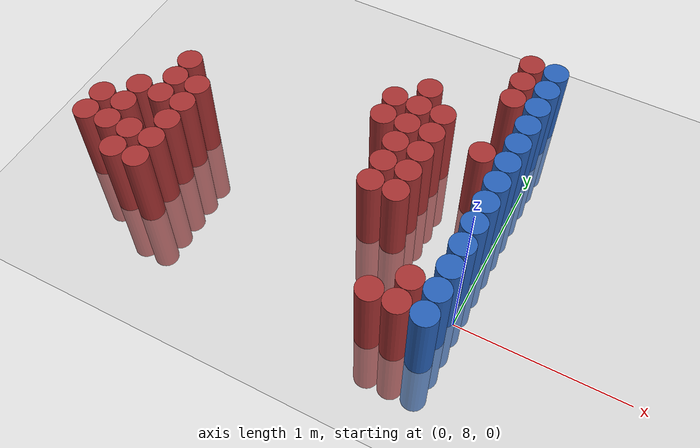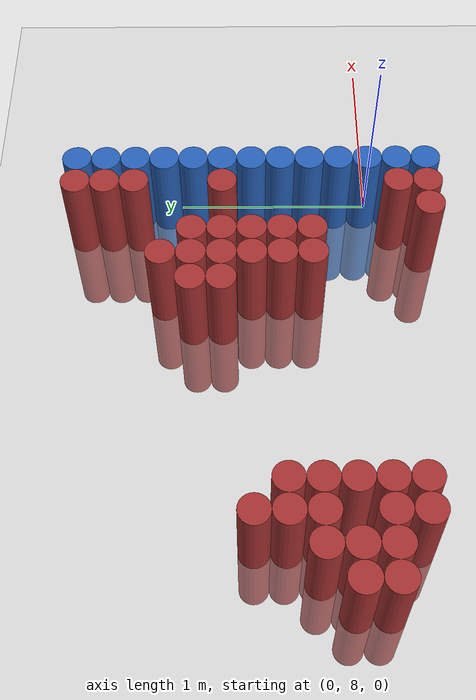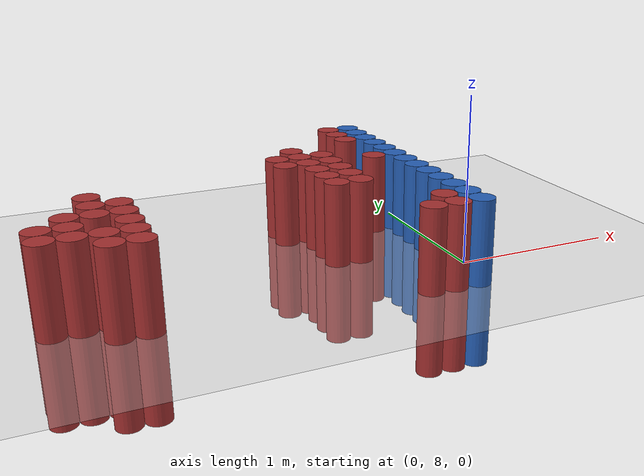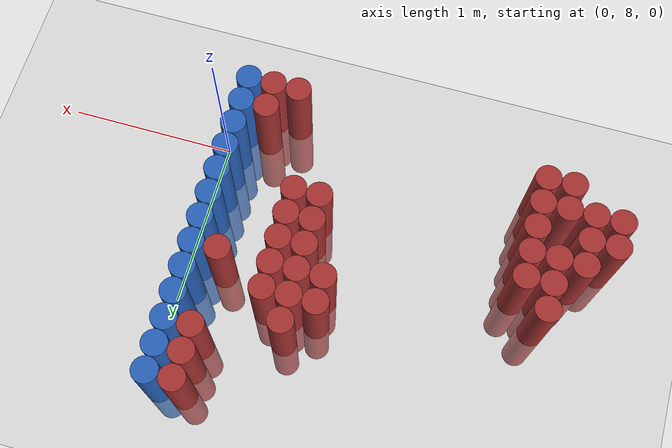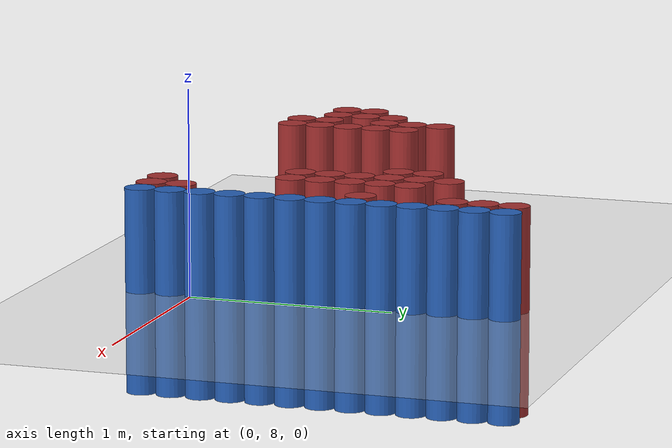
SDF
<sdf version="1.6">
 <world name="default">
  <model name="ground_plane">
   <static>1</static>
   <link name="link">
    <collision name="collision">
     <geometry><plane><normal>0 0 1</normal><size>100 100</size></plane></geometry>
     <surface><friction><ode><mu>100</mu><mu2>50</mu2></ode></friction></surface>
    </collision>
    <visual name="visual">
     <cast_shadows>0</cast_shadows>
     <geometry><plane><normal>0 0 1</normal><size>100 100</size></plane></geometry>
     <material>
      <script><uri>file://media/materials/scripts/gazebo.material</uri><name>Gazebo/Grey</name></script>
     </material>
    </visual>
   </link>
  </model>
  <model name="unit_cylinder_172">
   <static>1</static>
   <pose>-2.325000 8.025000 0.000000 0.000000 0.000000 0.000000</pose>
   <link name="link">
    <inertial>
     <mass>1</mass>
     <inertia><ixx>0.145833</ixx><ixy>0</ixy><ixz>0</ixz><iyy>0.145833</iyy><iyz>0</iyz><izz>0.125</izz></inertia>
    </inertial>
    <collision name="collision">
     <geometry><cylinder><radius>0.075000</radius><length>1</length></cylinder></geometry>
    </collision>
    <visual name="visual">
     <geometry><cylinder><radius>0.075000</radius><length>1</length></cylinder></geometry>
     <material>
      <ambient>0.648000 0.192000 0.192000 1</ambient>
      <diffuse>0.648000 0.192000 0.192000 1</diffuse>
     </material>
     <material>
      <script><name>Gazebo/Grey</name><uri>file://media/materials/scripts/gazebo.material</uri></script>
     </material>
    </visual>
   </link>
  </model>
  <model name="unit_cylinder_173">
   <static>1</static>
   <pose>-2.325000 8.175000 0.000000 0.000000 0.000000 0.000000</pose>
   <link name="link">
    <inertial>
     <mass>1</mass>
     <inertia><ixx>0.145833</ixx><ixy>0</ixy><ixz>0</ixz><iyy>0.145833</iyy><iyz>0</iyz><izz>0.125</izz></inertia>
    </inertial>
    <collision name="collision">
     <geometry><cylinder><radius>0.075000</radius><length>1</length></cylinder></geometry>
    </collision>
    <visual name="visual">
     <geometry><cylinder><radius>0.075000</radius><length>1</length></cylinder></geometry>
     <material>
      <ambient>0.648000 0.192000 0.192000 1</ambient>
      <diffuse>0.648000 0.192000 0.192000 1</diffuse>
     </material>
     <material>
      <script><name>Gazebo/Grey</name><uri>file://media/materials/scripts/gazebo.material</uri></script>
     </material>
    </visual>
   </link>
  </model>
  <model name="unit_cylinder_181">
   <static>1</static>
   <pose>-2.175000 8.025000 0.000000 0.000000 0.000000 0.000000</pose>
   <link name="link">
    <inertial>
     <mass>1</mass>
     <inertia><ixx>0.145833</ixx><ixy>0</ixy><ixz>0</ixz><iyy>0.145833</iyy><iyz>0</iyz><izz>0.125</izz></inertia>
    </inertial>
    <collision name="collision">
     <geometry><cylinder><radius>0.075000</radius><length>1</length></cylinder></geometry>
    </collision>
    <visual name="visual">
     <geometry><cylinder><radius>0.075000</radius><length>1</length></cylinder></geometry>
     <material>
      <ambient>0.648000 0.192000 0.192000 1</ambient>
      <diffuse>0.648000 0.192000 0.192000 1</diffuse>
     </material>
     <material>
      <script><name>Gazebo/Grey</name><uri>file://media/materials/scripts/gazebo.material</uri></script>
     </material>
    </visual>
   </link>
  </model>
  <model name="unit_cylinder_182">
   <static>1</static>
   <pose>-2.175000 8.175000 0.000000 0.000000 0.000000 0.000000</pose>
   <link name="link">
    <inertial>
     <mass>1</mass>
     <inertia><ixx>0.145833</ixx><ixy>0</ixy><ixz>0</ixz><iyy>0.145833</iyy><iyz>0</iyz><izz>0.125</izz></inertia>
    </inertial>
    <collision name="collision">
     <geometry><cylinder><radius>0.075000</radius><length>1</length></cylinder></geometry>
    </collision>
    <visual name="visual">
     <geometry><cylinder><radius>0.075000</radius><length>1</length></cylinder></geometry>
     <material>
      <ambient>0.648000 0.192000 0.192000 1</ambient>
      <diffuse>0.648000 0.192000 0.192000 1</diffuse>
     </material>
     <material>
      <script><name>Gazebo/Grey</name><uri>file://media/materials/scripts/gazebo.material</uri></script>
     </material>
    </visual>
   </link>
  </model>
  <model name="unit_cylinder_183">
   <static>1</static>
   <pose>-2.175000 8.325000 0.000000 0.000000 0.000000 0.000000</pose>
   <link name="link">
    <inertial>
     <mass>1</mass>
     <inertia><ixx>0.145833</ixx><ixy>0</ixy><ixz>0</ixz><iyy>0.145833</iyy><iyz>0</iyz><izz>0.125</izz></inertia>
    </inertial>
    <collision name="collision">
     <geometry><cylinder><radius>0.075000</radius><length>1</length></cylinder></geometry>
    </collision>
    <visual name="visual">
     <geometry><cylinder><radius>0.075000</radius><length>1</length></cylinder></geometry>
     <material>
      <ambient>0.648000 0.192000 0.192000 1</ambient>
      <diffuse>0.648000 0.192000 0.192000 1</diffuse>
     </material>
     <material>
      <script><name>Gazebo/Grey</name><uri>file://media/materials/scripts/gazebo.material</uri></script>
     </material>
    </visual>
   </link>
  </model>
  <model name="unit_cylinder_187">
   <static>1</static>
   <pose>-2.025000 7.875000 0.000000 0.000000 0.000000 0.000000</pose>
   <link name="link">
    <inertial>
     <mass>1</mass>
     <inertia><ixx>0.145833</ixx><ixy>0</ixy><ixz>0</ixz><iyy>0.145833</iyy><iyz>0</iyz><izz>0.125</izz></inertia>
    </inertial>
    <collision name="collision">
     <geometry><cylinder><radius>0.075000</radius><length>1</length></cylinder></geometry>
    </collision>
    <visual name="visual">
     <geometry><cylinder><radius>0.075000</radius><length>1</length></cylinder></geometry>
     <material>
      <ambient>0.648000 0.192000 0.192000 1</ambient>
      <diffuse>0.648000 0.192000 0.192000 1</diffuse>
     </material>
     <material>
      <script><name>Gazebo/Grey</name><uri>file://media/materials/scripts/gazebo.material</uri></script>
     </material>
    </visual>
   </link>
  </model>
  <model name="unit_cylinder_188">
   <static>1</static>
   <pose>-2.025000 8.025000 0.000000 0.000000 0.000000 0.000000</pose>
   <link name="link">
    <inertial>
     <mass>1</mass>
     <inertia><ixx>0.145833</ixx><ixy>0</ixy><ixz>0</ixz><iyy>0.145833</iyy><iyz>0</iyz><izz>0.125</izz></inertia>
    </inertial>
    <collision name="collision">
     <geometry><cylinder><radius>0.075000</radius><length>1</length></cylinder></geometry>
    </collision>
    <visual name="visual">
     <geometry><cylinder><radius>0.075000</radius><length>1</length></cylinder></geometry>
     <material>
      <ambient>0.648000 0.192000 0.192000 1</ambient>
      <diffuse>0.648000 0.192000 0.192000 1</diffuse>
     </material>
     <material>
      <script><name>Gazebo/Grey</name><uri>file://media/materials/scripts/gazebo.material</uri></script>
     </material>
    </visual>
   </link>
  </model>
  <model name="unit_cylinder_189">
   <static>1</static>
   <pose>-2.025000 8.325000 0.000000 0.000000 0.000000 0.000000</pose>
   <link name="link">
    <inertial>
     <mass>1</mass>
     <inertia><ixx>0.145833</ixx><ixy>0</ixy><ixz>0</ixz><iyy>0.145833</iyy><iyz>0</iyz><izz>0.125</izz></inertia>
    </inertial>
    <collision name="collision">
     <geometry><cylinder><radius>0.075000</radius><length>1</length></cylinder></geometry>
    </collision>
    <visual name="visual">
     <geometry><cylinder><radius>0.075000</radius><length>1</length></cylinder></geometry>
     <material>
      <ambient>0.648000 0.192000 0.192000 1</ambient>
      <diffuse>0.648000 0.192000 0.192000 1</diffuse>
     </material>
     <material>
      <script><name>Gazebo/Grey</name><uri>file://media/materials/scripts/gazebo.material</uri></script>
     </material>
    </visual>
   </link>
  </model>
  <model name="unit_cylinder_190">
   <static>1</static>
   <pose>-2.025000 8.475000 0.000000 0.000000 0.000000 0.000000</pose>
   <link name="link">
    <inertial>
     <mass>1</mass>
     <inertia><ixx>0.145833</ixx><ixy>0</ixy><ixz>0</ixz><iyy>0.145833</iyy><iyz>0</iyz><izz>0.125</izz></inertia>
    </inertial>
    <collision name="collision">
     <geometry><cylinder><radius>0.075000</radius><length>1</length></cylinder></geometry>
    </collision>
    <visual name="visual">
     <geometry><cylinder><radius>0.075000</radius><length>1</length></cylinder></geometry>
     <material>
      <ambient>0.648000 0.192000 0.192000 1</ambient>
      <diffuse>0.648000 0.192000 0.192000 1</diffuse>
     </material>
     <material>
      <script><name>Gazebo/Grey</name><uri>file://media/materials/scripts/gazebo.material</uri></script>
     </material>
    </visual>
   </link>
  </model>
  <model name="unit_cylinder_191">
   <static>1</static>
   <pose>-2.025000 8.625000 0.000000 0.000000 0.000000 0.000000</pose>
   <link name="link">
    <inertial>
     <mass>1</mass>
     <inertia><ixx>0.145833</ixx><ixy>0</ixy><ixz>0</ixz><iyy>0.145833</iyy><iyz>0</iyz><izz>0.125</izz></inertia>
    </inertial>
    <collision name="collision">
     <geometry><cylinder><radius>0.075000</radius><length>1</length></cylinder></geometry>
    </collision>
    <visual name="visual">
     <geometry><cylinder><radius>0.075000</radius><length>1</length></cylinder></geometry>
     <material>
      <ambient>0.648000 0.192000 0.192000 1</ambient>
      <diffuse>0.648000 0.192000 0.192000 1</diffuse>
     </material>
     <material>
      <script><name>Gazebo/Grey</name><uri>file://media/materials/scripts/gazebo.material</uri></script>
     </material>
    </visual>
   </link>
  </model>
  <model name="unit_cylinder_193">
   <static>1</static>
   <pose>-1.875000 7.875000 0.000000 0.000000 0.000000 0.000000</pose>
   <link name="link">
    <inertial>
     <mass>1</mass>
     <inertia><ixx>0.145833</ixx><ixy>0</ixy><ixz>0</ixz><iyy>0.145833</iyy><iyz>0</iyz><izz>0.125</izz></inertia>
    </inertial>
    <collision name="collision">
     <geometry><cylinder><radius>0.075000</radius><length>1</length></cylinder></geometry>
    </collision>
    <visual name="visual">
     <geometry><cylinder><radius>0.075000</radius><length>1</length></cylinder></geometry>
     <material>
      <ambient>0.648000 0.192000 0.192000 1</ambient>
      <diffuse>0.648000 0.192000 0.192000 1</diffuse>
     </material>
     <material>
      <script><name>Gazebo/Grey</name><uri>file://media/materials/scripts/gazebo.material</uri></script>
     </material>
    </visual>
   </link>
  </model>
  <model name="unit_cylinder_194">
   <static>1</static>
   <pose>-1.875000 8.025000 0.000000 0.000000 0.000000 0.000000</pose>
   <link name="link">
    <inertial>
     <mass>1</mass>
     <inertia><ixx>0.145833</ixx><ixy>0</ixy><ixz>0</ixz><iyy>0.145833</iyy><iyz>0</iyz><izz>0.125</izz></inertia>
    </inertial>
    <collision name="collision">
     <geometry><cylinder><radius>0.075000</radius><length>1</length></cylinder></geometry>
    </collision>
    <visual name="visual">
     <geometry><cylinder><radius>0.075000</radius><length>1</length></cylinder></geometry>
     <material>
      <ambient>0.648000 0.192000 0.192000 1</ambient>
      <diffuse>0.648000 0.192000 0.192000 1</diffuse>
     </material>
     <material>
      <script><name>Gazebo/Grey</name><uri>file://media/materials/scripts/gazebo.material</uri></script>
     </material>
    </visual>
   </link>
  </model>
  <model name="unit_cylinder_195">
   <static>1</static>
   <pose>-1.875000 8.175000 0.000000 0.000000 0.000000 0.000000</pose>
   <link name="link">
    <inertial>
     <mass>1</mass>
     <inertia><ixx>0.145833</ixx><ixy>0</ixy><ixz>0</ixz><iyy>0.145833</iyy><iyz>0</iyz><izz>0.125</izz></inertia>
    </inertial>
    <collision name="collision">
     <geometry><cylinder><radius>0.075000</radius><length>1</length></cylinder></geometry>
    </collision>
    <visual name="visual">
     <geometry><cylinder><radius>0.075000</radius><length>1</length></cylinder></geometry>
     <material>
      <ambient>0.648000 0.192000 0.192000 1</ambient>
      <diffuse>0.648000 0.192000 0.192000 1</diffuse>
     </material>
     <material>
      <script><name>Gazebo/Grey</name><uri>file://media/materials/scripts/gazebo.material</uri></script>
     </material>
    </visual>
   </link>
  </model>
  <model name="unit_cylinder_196">
   <static>1</static>
   <pose>-1.875000 8.325000 0.000000 0.000000 0.000000 0.000000</pose>
   <link name="link">
    <inertial>
     <mass>1</mass>
     <inertia><ixx>0.145833</ixx><ixy>0</ixy><ixz>0</ixz><iyy>0.145833</iyy><iyz>0</iyz><izz>0.125</izz></inertia>
    </inertial>
    <collision name="collision">
     <geometry><cylinder><radius>0.075000</radius><length>1</length></cylinder></geometry>
    </collision>
    <visual name="visual">
     <geometry><cylinder><radius>0.075000</radius><length>1</length></cylinder></geometry>
     <material>
      <ambient>0.648000 0.192000 0.192000 1</ambient>
      <diffuse>0.648000 0.192000 0.192000 1</diffuse>
     </material>
     <material>
      <script><name>Gazebo/Grey</name><uri>file://media/materials/scripts/gazebo.material</uri></script>
     </material>
    </visual>
   </link>
  </model>
  <model name="unit_cylinder_197">
   <static>1</static>
   <pose>-1.875000 8.475000 0.000000 0.000000 0.000000 0.000000</pose>
   <link name="link">
    <inertial>
     <mass>1</mass>
     <inertia><ixx>0.145833</ixx><ixy>0</ixy><ixz>0</ixz><iyy>0.145833</iyy><iyz>0</iyz><izz>0.125</izz></inertia>
    </inertial>
    <collision name="collision">
     <geometry><cylinder><radius>0.075000</radius><length>1</length></cylinder></geometry>
    </collision>
    <visual name="visual">
     <geometry><cylinder><radius>0.075000</radius><length>1</length></cylinder></geometry>
     <material>
      <ambient>0.648000 0.192000 0.192000 1</ambient>
      <diffuse>0.648000 0.192000 0.192000 1</diffuse>
     </material>
     <material>
      <script><name>Gazebo/Grey</name><uri>file://media/materials/scripts/gazebo.material</uri></script>
     </material>
    </visual>
   </link>
  </model>
  <model name="unit_cylinder_212">
   <static>1</static>
   <pose>-0.825000 8.775000 0.000000 0.000000 0.000000 0.000000</pose>
   <link name="link">
    <inertial>
     <mass>1</mass>
     <inertia><ixx>0.145833</ixx><ixy>0</ixy><ixz>0</ixz><iyy>0.145833</iyy><iyz>0</iyz><izz>0.125</izz></inertia>
    </inertial>
    <collision name="collision">
     <geometry><cylinder><radius>0.075000</radius><length>1</length></cylinder></geometry>
    </collision>
    <visual name="visual">
     <geometry><cylinder><radius>0.075000</radius><length>1</length></cylinder></geometry>
     <material>
      <ambient>0.648000 0.192000 0.192000 1</ambient>
      <diffuse>0.648000 0.192000 0.192000 1</diffuse>
     </material>
     <material>
      <script><name>Gazebo/Grey</name><uri>file://media/materials/scripts/gazebo.material</uri></script>
     </material>
    </visual>
   </link>
  </model>
  <model name="unit_cylinder_213">
   <static>1</static>
   <pose>-0.825000 8.925000 0.000000 0.000000 0.000000 0.000000</pose>
   <link name="link">
    <inertial>
     <mass>1</mass>
     <inertia><ixx>0.145833</ixx><ixy>0</ixy><ixz>0</ixz><iyy>0.145833</iyy><iyz>0</iyz><izz>0.125</izz></inertia>
    </inertial>
    <collision name="collision">
     <geometry><cylinder><radius>0.075000</radius><length>1</length></cylinder></geometry>
    </collision>
    <visual name="visual">
     <geometry><cylinder><radius>0.075000</radius><length>1</length></cylinder></geometry>
     <material>
      <ambient>0.648000 0.192000 0.192000 1</ambient>
      <diffuse>0.648000 0.192000 0.192000 1</diffuse>
     </material>
     <material>
      <script><name>Gazebo/Grey</name><uri>file://media/materials/scripts/gazebo.material</uri></script>
     </material>
    </visual>
   </link>
  </model>
  <model name="unit_cylinder_218">
   <static>1</static>
   <pose>-0.675000 8.325000 0.000000 0.000000 0.000000 0.000000</pose>
   <link name="link">
    <inertial>
     <mass>1</mass>
     <inertia><ixx>0.145833</ixx><ixy>0</ixy><ixz>0</ixz><iyy>0.145833</iyy><iyz>0</iyz><izz>0.125</izz></inertia>
    </inertial>
    <collision name="collision">
     <geometry><cylinder><radius>0.075000</radius><length>1</length></cylinder></geometry>
    </collision>
    <visual name="visual">
     <geometry><cylinder><radius>0.075000</radius><length>1</length></cylinder></geometry>
     <material>
      <ambient>0.648000 0.192000 0.192000 1</ambient>
      <diffuse>0.648000 0.192000 0.192000 1</diffuse>
     </material>
     <material>
      <script><name>Gazebo/Grey</name><uri>file://media/materials/scripts/gazebo.material</uri></script>
     </material>
    </visual>
   </link>
  </model>
  <model name="unit_cylinder_219">
   <static>1</static>
   <pose>-0.675000 8.475000 0.000000 0.000000 0.000000 0.000000</pose>
   <link name="link">
    <inertial>
     <mass>1</mass>
     <inertia><ixx>0.145833</ixx><ixy>0</ixy><ixz>0</ixz><iyy>0.145833</iyy><iyz>0</iyz><izz>0.125</izz></inertia>
    </inertial>
    <collision name="collision">
     <geometry><cylinder><radius>0.075000</radius><length>1</length></cylinder></geometry>
    </collision>
    <visual name="visual">
     <geometry><cylinder><radius>0.075000</radius><length>1</length></cylinder></geometry>
     <material>
      <ambient>0.648000 0.192000 0.192000 1</ambient>
      <diffuse>0.648000 0.192000 0.192000 1</diffuse>
     </material>
     <material>
      <script><name>Gazebo/Grey</name><uri>file://media/materials/scripts/gazebo.material</uri></script>
     </material>
    </visual>
   </link>
  </model>
  <model name="unit_cylinder_220">
   <static>1</static>
   <pose>-0.675000 8.625000 0.000000 0.000000 0.000000 0.000000</pose>
   <link name="link">
    <inertial>
     <mass>1</mass>
     <inertia><ixx>0.145833</ixx><ixy>0</ixy><ixz>0</ixz><iyy>0.145833</iyy><iyz>0</iyz><izz>0.125</izz></inertia>
    </inertial>
    <collision name="collision">
     <geometry><cylinder><radius>0.075000</radius><length>1</length></cylinder></geometry>
    </collision>
    <visual name="visual">
     <geometry><cylinder><radius>0.075000</radius><length>1</length></cylinder></geometry>
     <material>
      <ambient>0.648000 0.192000 0.192000 1</ambient>
      <diffuse>0.648000 0.192000 0.192000 1</diffuse>
     </material>
     <material>
      <script><name>Gazebo/Grey</name><uri>file://media/materials/scripts/gazebo.material</uri></script>
     </material>
    </visual>
   </link>
  </model>
  <model name="unit_cylinder_221">
   <static>1</static>
   <pose>-0.675000 8.775000 0.000000 0.000000 0.000000 0.000000</pose>
   <link name="link">
    <inertial>
     <mass>1</mass>
     <inertia><ixx>0.145833</ixx><ixy>0</ixy><ixz>0</ixz><iyy>0.145833</iyy><iyz>0</iyz><izz>0.125</izz></inertia>
    </inertial>
    <collision name="collision">
     <geometry><cylinder><radius>0.075000</radius><length>1</length></cylinder></geometry>
    </collision>
    <visual name="visual">
     <geometry><cylinder><radius>0.075000</radius><length>1</length></cylinder></geometry>
     <material>
      <ambient>0.648000 0.192000 0.192000 1</ambient>
      <diffuse>0.648000 0.192000 0.192000 1</diffuse>
     </material>
     <material>
      <script><name>Gazebo/Grey</name><uri>file://media/materials/scripts/gazebo.material</uri></script>
     </material>
    </visual>
   </link>
  </model>
  <model name="unit_cylinder_222">
   <static>1</static>
   <pose>-0.675000 8.925000 0.000000 0.000000 0.000000 0.000000</pose>
   <link name="link">
    <inertial>
     <mass>1</mass>
     <inertia><ixx>0.145833</ixx><ixy>0</ixy><ixz>0</ixz><iyy>0.145833</iyy><iyz>0</iyz><izz>0.125</izz></inertia>
    </inertial>
    <collision name="collision">
     <geometry><cylinder><radius>0.075000</radius><length>1</length></cylinder></geometry>
    </collision>
    <visual name="visual">
     <geometry><cylinder><radius>0.075000</radius><length>1</length></cylinder></geometry>
     <material>
      <ambient>0.648000 0.192000 0.192000 1</ambient>
      <diffuse>0.648000 0.192000 0.192000 1</diffuse>
     </material>
     <material>
      <script><name>Gazebo/Grey</name><uri>file://media/materials/scripts/gazebo.material</uri></script>
     </material>
    </visual>
   </link>
  </model>
  <model name="unit_cylinder_223">
   <static>1</static>
   <pose>-0.675000 9.075000 0.000000 0.000000 0.000000 0.000000</pose>
   <link name="link">
    <inertial>
     <mass>1</mass>
     <inertia><ixx>0.145833</ixx><ixy>0</ixy><ixz>0</ixz><iyy>0.145833</iyy><iyz>0</iyz><izz>0.125</izz></inertia>
    </inertial>
    <collision name="collision">
     <geometry><cylinder><radius>0.075000</radius><length>1</length></cylinder></geometry>
    </collision>
    <visual name="visual">
     <geometry><cylinder><radius>0.075000</radius><length>1</length></cylinder></geometry>
     <material>
      <ambient>0.648000 0.192000 0.192000 1</ambient>
      <diffuse>0.648000 0.192000 0.192000 1</diffuse>
     </material>
     <material>
      <script><name>Gazebo/Grey</name><uri>file://media/materials/scripts/gazebo.material</uri></script>
     </material>
    </visual>
   </link>
  </model>
  <model name="unit_cylinder_229">
   <static>1</static>
   <pose>-0.525000 8.325000 0.000000 0.000000 0.000000 0.000000</pose>
   <link name="link">
    <inertial>
     <mass>1</mass>
     <inertia><ixx>0.145833</ixx><ixy>0</ixy><ixz>0</ixz><iyy>0.145833</iyy><iyz>0</iyz><izz>0.125</izz></inertia>
    </inertial>
    <collision name="collision">
     <geometry><cylinder><radius>0.075000</radius><length>1</length></cylinder></geometry>
    </collision>
    <visual name="visual">
     <geometry><cylinder><radius>0.075000</radius><length>1</length></cylinder></geometry>
     <material>
      <ambient>0.648000 0.192000 0.192000 1</ambient>
      <diffuse>0.648000 0.192000 0.192000 1</diffuse>
     </material>
     <material>
      <script><name>Gazebo/Grey</name><uri>file://media/materials/scripts/gazebo.material</uri></script>
     </material>
    </visual>
   </link>
  </model>
  <model name="unit_cylinder_230">
   <static>1</static>
   <pose>-0.525000 8.475000 0.000000 0.000000 0.000000 0.000000</pose>
   <link name="link">
    <inertial>
     <mass>1</mass>
     <inertia><ixx>0.145833</ixx><ixy>0</ixy><ixz>0</ixz><iyy>0.145833</iyy><iyz>0</iyz><izz>0.125</izz></inertia>
    </inertial>
    <collision name="collision">
     <geometry><cylinder><radius>0.075000</radius><length>1</length></cylinder></geometry>
    </collision>
    <visual name="visual">
     <geometry><cylinder><radius>0.075000</radius><length>1</length></cylinder></geometry>
     <material>
      <ambient>0.648000 0.192000 0.192000 1</ambient>
      <diffuse>0.648000 0.192000 0.192000 1</diffuse>
     </material>
     <material>
      <script><name>Gazebo/Grey</name><uri>file://media/materials/scripts/gazebo.material</uri></script>
     </material>
    </visual>
   </link>
  </model>
  <model name="unit_cylinder_231">
   <static>1</static>
   <pose>-0.525000 8.625000 0.000000 0.000000 0.000000 0.000000</pose>
   <link name="link">
    <inertial>
     <mass>1</mass>
     <inertia><ixx>0.145833</ixx><ixy>0</ixy><ixz>0</ixz><iyy>0.145833</iyy><iyz>0</iyz><izz>0.125</izz></inertia>
    </inertial>
    <collision name="collision">
     <geometry><cylinder><radius>0.075000</radius><length>1</length></cylinder></geometry>
    </collision>
    <visual name="visual">
     <geometry><cylinder><radius>0.075000</radius><length>1</length></cylinder></geometry>
     <material>
      <ambient>0.648000 0.192000 0.192000 1</ambient>
      <diffuse>0.648000 0.192000 0.192000 1</diffuse>
     </material>
     <material>
      <script><name>Gazebo/Grey</name><uri>file://media/materials/scripts/gazebo.material</uri></script>
     </material>
    </visual>
   </link>
  </model>
  <model name="unit_cylinder_232">
   <static>1</static>
   <pose>-0.525000 8.775000 0.000000 0.000000 0.000000 0.000000</pose>
   <link name="link">
    <inertial>
     <mass>1</mass>
     <inertia><ixx>0.145833</ixx><ixy>0</ixy><ixz>0</ixz><iyy>0.145833</iyy><iyz>0</iyz><izz>0.125</izz></inertia>
    </inertial>
    <collision name="collision">
     <geometry><cylinder><radius>0.075000</radius><length>1</length></cylinder></geometry>
    </collision>
    <visual name="visual">
     <geometry><cylinder><radius>0.075000</radius><length>1</length></cylinder></geometry>
     <material>
      <ambient>0.648000 0.192000 0.192000 1</ambient>
      <diffuse>0.648000 0.192000 0.192000 1</diffuse>
     </material>
     <material>
      <script><name>Gazebo/Grey</name><uri>file://media/materials/scripts/gazebo.material</uri></script>
     </material>
    </visual>
   </link>
  </model>
  <model name="unit_cylinder_233">
   <static>1</static>
   <pose>-0.525000 8.925000 0.000000 0.000000 0.000000 0.000000</pose>
   <link name="link">
    <inertial>
     <mass>1</mass>
     <inertia><ixx>0.145833</ixx><ixy>0</ixy><ixz>0</ixz><iyy>0.145833</iyy><iyz>0</iyz><izz>0.125</izz></inertia>
    </inertial>
    <collision name="collision">
     <geometry><cylinder><radius>0.075000</radius><length>1</length></cylinder></geometry>
    </collision>
    <visual name="visual">
     <geometry><cylinder><radius>0.075000</radius><length>1</length></cylinder></geometry>
     <material>
      <ambient>0.648000 0.192000 0.192000 1</ambient>
      <diffuse>0.648000 0.192000 0.192000 1</diffuse>
     </material>
     <material>
      <script><name>Gazebo/Grey</name><uri>file://media/materials/scripts/gazebo.material</uri></script>
     </material>
    </visual>
   </link>
  </model>
  <model name="unit_cylinder_239">
   <static>1</static>
   <pose>-0.375000 7.725000 0.000000 0.000000 0.000000 0.000000</pose>
   <link name="link">
    <inertial>
     <mass>1</mass>
     <inertia><ixx>0.145833</ixx><ixy>0</ixy><ixz>0</ixz><iyy>0.145833</iyy><iyz>0</iyz><izz>0.125</izz></inertia>
    </inertial>
    <collision name="collision">
     <geometry><cylinder><radius>0.075000</radius><length>1</length></cylinder></geometry>
    </collision>
    <visual name="visual">
     <geometry><cylinder><radius>0.075000</radius><length>1</length></cylinder></geometry>
     <material>
      <ambient>0.648000 0.192000 0.192000 1</ambient>
      <diffuse>0.648000 0.192000 0.192000 1</diffuse>
     </material>
     <material>
      <script><name>Gazebo/Grey</name><uri>file://media/materials/scripts/gazebo.material</uri></script>
     </material>
    </visual>
   </link>
  </model>
  <model name="unit_cylinder_253">
   <static>1</static>
   <pose>-0.225000 7.725000 0.000000 0.000000 0.000000 0.000000</pose>
   <link name="link">
    <inertial>
     <mass>1</mass>
     <inertia><ixx>0.145833</ixx><ixy>0</ixy><ixz>0</ixz><iyy>0.145833</iyy><iyz>0</iyz><izz>0.125</izz></inertia>
    </inertial>
    <collision name="collision">
     <geometry><cylinder><radius>0.075000</radius><length>1</length></cylinder></geometry>
    </collision>
    <visual name="visual">
     <geometry><cylinder><radius>0.075000</radius><length>1</length></cylinder></geometry>
     <material>
      <ambient>0.648000 0.192000 0.192000 1</ambient>
      <diffuse>0.648000 0.192000 0.192000 1</diffuse>
     </material>
     <material>
      <script><name>Gazebo/Grey</name><uri>file://media/materials/scripts/gazebo.material</uri></script>
     </material>
    </visual>
   </link>
  </model>
  <model name="unit_cylinder_254">
   <static>1</static>
   <pose>-0.225000 7.875000 0.000000 0.000000 0.000000 0.000000</pose>
   <link name="link">
    <inertial>
     <mass>1</mass>
     <inertia><ixx>0.145833</ixx><ixy>0</ixy><ixz>0</ixz><iyy>0.145833</iyy><iyz>0</iyz><izz>0.125</izz></inertia>
    </inertial>
    <collision name="collision">
     <geometry><cylinder><radius>0.075000</radius><length>1</length></cylinder></geometry>
    </collision>
    <visual name="visual">
     <geometry><cylinder><radius>0.075000</radius><length>1</length></cylinder></geometry>
     <material>
      <ambient>0.648000 0.192000 0.192000 1</ambient>
      <diffuse>0.648000 0.192000 0.192000 1</diffuse>
     </material>
     <material>
      <script><name>Gazebo/Grey</name><uri>file://media/materials/scripts/gazebo.material</uri></script>
     </material>
    </visual>
   </link>
  </model>
  <model name="unit_cylinder_255">
   <static>1</static>
   <pose>-0.225000 8.775000 0.000000 0.000000 0.000000 0.000000</pose>
   <link name="link">
    <inertial>
     <mass>1</mass>
     <inertia><ixx>0.145833</ixx><ixy>0</ixy><ixz>0</ixz><iyy>0.145833</iyy><iyz>0</iyz><izz>0.125</izz></inertia>
    </inertial>
    <collision name="collision">
     <geometry><cylinder><radius>0.075000</radius><length>1</length></cylinder></geometry>
    </collision>
    <visual name="visual">
     <geometry><cylinder><radius>0.075000</radius><length>1</length></cylinder></geometry>
     <material>
      <ambient>0.648000 0.192000 0.192000 1</ambient>
      <diffuse>0.648000 0.192000 0.192000 1</diffuse>
     </material>
     <material>
      <script><name>Gazebo/Grey</name><uri>file://media/materials/scripts/gazebo.material</uri></script>
     </material>
    </visual>
   </link>
  </model>
  <model name="unit_cylinder_256">
   <static>1</static>
   <pose>-0.225000 9.225000 0.000000 0.000000 0.000000 0.000000</pose>
   <link name="link">
    <inertial>
     <mass>1</mass>
     <inertia><ixx>0.145833</ixx><ixy>0</ixy><ixz>0</ixz><iyy>0.145833</iyy><iyz>0</iyz><izz>0.125</izz></inertia>
    </inertial>
    <collision name="collision">
     <geometry><cylinder><radius>0.075000</radius><length>1</length></cylinder></geometry>
    </collision>
    <visual name="visual">
     <geometry><cylinder><radius>0.075000</radius><length>1</length></cylinder></geometry>
     <material>
      <ambient>0.648000 0.192000 0.192000 1</ambient>
      <diffuse>0.648000 0.192000 0.192000 1</diffuse>
     </material>
     <material>
      <script><name>Gazebo/Grey</name><uri>file://media/materials/scripts/gazebo.material</uri></script>
     </material>
    </visual>
   </link>
  </model>
  <model name="unit_cylinder_257">
   <static>1</static>
   <pose>-0.225000 9.375000 0.000000 0.000000 0.000000 0.000000</pose>
   <link name="link">
    <inertial>
     <mass>1</mass>
     <inertia><ixx>0.145833</ixx><ixy>0</ixy><ixz>0</ixz><iyy>0.145833</iyy><iyz>0</iyz><izz>0.125</izz></inertia>
    </inertial>
    <collision name="collision">
     <geometry><cylinder><radius>0.075000</radius><length>1</length></cylinder></geometry>
    </collision>
    <visual name="visual">
     <geometry><cylinder><radius>0.075000</radius><length>1</length></cylinder></geometry>
     <material>
      <ambient>0.648000 0.192000 0.192000 1</ambient>
      <diffuse>0.648000 0.192000 0.192000 1</diffuse>
     </material>
     <material>
      <script><name>Gazebo/Grey</name><uri>file://media/materials/scripts/gazebo.material</uri></script>
     </material>
    </visual>
   </link>
  </model>
  <model name="unit_cylinder_258">
   <static>1</static>
   <pose>-0.225000 9.525000 0.000000 0.000000 0.000000 0.000000</pose>
   <link name="link">
    <inertial>
     <mass>1</mass>
     <inertia><ixx>0.145833</ixx><ixy>0</ixy><ixz>0</ixz><iyy>0.145833</iyy><iyz>0</iyz><izz>0.125</izz></inertia>
    </inertial>
    <collision name="collision">
     <geometry><cylinder><radius>0.075000</radius><length>1</length></cylinder></geometry>
    </collision>
    <visual name="visual">
     <geometry><cylinder><radius>0.075000</radius><length>1</length></cylinder></geometry>
     <material>
      <ambient>0.648000 0.192000 0.192000 1</ambient>
      <diffuse>0.648000 0.192000 0.192000 1</diffuse>
     </material>
     <material>
      <script><name>Gazebo/Grey</name><uri>file://media/materials/scripts/gazebo.material</uri></script>
     </material>
    </visual>
   </link>
  </model>
  <model name="unit_cylinder_276">
   <static>1</static>
   <pose>-0.075000 7.725000 0.000000 0.000000 0.000000 0.000000</pose>
   <link name="link">
    <inertial>
     <mass>1</mass>
     <inertia><ixx>0.145833</ixx><ixy>0</ixy><ixz>0</ixz><iyy>0.145833</iyy><iyz>0</iyz><izz>0.125</izz></inertia>
    </inertial>
    <collision name="collision">
     <geometry><cylinder><radius>0.075000</radius><length>1</length></cylinder></geometry>
    </collision>
    <visual name="visual">
     <geometry><cylinder><radius>0.075000</radius><length>1</length></cylinder></geometry>
     <material>
      <ambient>0.152000 0.379000 0.720000 1</ambient>
      <diffuse>0.152000 0.379000 0.720000 1</diffuse>
     </material>
     <material>
      <script><name>Gazebo/Grey</name><uri>file://media/materials/scripts/gazebo.material</uri></script>
     </material>
    </visual>
   </link>
  </model>
  <model name="unit_cylinder_277">
   <static>1</static>
   <pose>-0.075000 7.875000 0.000000 0.000000 0.000000 0.000000</pose>
   <link name="link">
    <inertial>
     <mass>1</mass>
     <inertia><ixx>0.145833</ixx><ixy>0</ixy><ixz>0</ixz><iyy>0.145833</iyy><iyz>0</iyz><izz>0.125</izz></inertia>
    </inertial>
    <collision name="collision">
     <geometry><cylinder><radius>0.075000</radius><length>1</length></cylinder></geometry>
    </collision>
    <visual name="visual">
     <geometry><cylinder><radius>0.075000</radius><length>1</length></cylinder></geometry>
     <material>
      <ambient>0.152000 0.379000 0.720000 1</ambient>
      <diffuse>0.152000 0.379000 0.720000 1</diffuse>
     </material>
     <material>
      <script><name>Gazebo/Grey</name><uri>file://media/materials/scripts/gazebo.material</uri></script>
     </material>
    </visual>
   </link>
  </model>
  <model name="unit_cylinder_278">
   <static>1</static>
   <pose>-0.075000 8.025000 0.000000 0.000000 0.000000 0.000000</pose>
   <link name="link">
    <inertial>
     <mass>1</mass>
     <inertia><ixx>0.145833</ixx><ixy>0</ixy><ixz>0</ixz><iyy>0.145833</iyy><iyz>0</iyz><izz>0.125</izz></inertia>
    </inertial>
    <collision name="collision">
     <geometry><cylinder><radius>0.075000</radius><length>1</length></cylinder></geometry>
    </collision>
    <visual name="visual">
     <geometry><cylinder><radius>0.075000</radius><length>1</length></cylinder></geometry>
     <material>
      <ambient>0.152000 0.379000 0.720000 1</ambient>
      <diffuse>0.152000 0.379000 0.720000 1</diffuse>
     </material>
     <material>
      <script><name>Gazebo/Grey</name><uri>file://media/materials/scripts/gazebo.material</uri></script>
     </material>
    </visual>
   </link>
  </model>
  <model name="unit_cylinder_279">
   <static>1</static>
   <pose>-0.075000 8.175000 0.000000 0.000000 0.000000 0.000000</pose>
   <link name="link">
    <inertial>
     <mass>1</mass>
     <inertia><ixx>0.145833</ixx><ixy>0</ixy><ixz>0</ixz><iyy>0.145833</iyy><iyz>0</iyz><izz>0.125</izz></inertia>
    </inertial>
    <collision name="collision">
     <geometry><cylinder><radius>0.075000</radius><length>1</length></cylinder></geometry>
    </collision>
    <visual name="visual">
     <geometry><cylinder><radius>0.075000</radius><length>1</length></cylinder></geometry>
     <material>
      <ambient>0.152000 0.379000 0.720000 1</ambient>
      <diffuse>0.152000 0.379000 0.720000 1</diffuse>
     </material>
     <material>
      <script><name>Gazebo/Grey</name><uri>file://media/materials/scripts/gazebo.material</uri></script>
     </material>
    </visual>
   </link>
  </model>
  <model name="unit_cylinder_280">
   <static>1</static>
   <pose>-0.075000 8.325000 0.000000 0.000000 0.000000 0.000000</pose>
   <link name="link">
    <inertial>
     <mass>1</mass>
     <inertia><ixx>0.145833</ixx><ixy>0</ixy><ixz>0</ixz><iyy>0.145833</iyy><iyz>0</iyz><izz>0.125</izz></inertia>
    </inertial>
    <collision name="collision">
     <geometry><cylinder><radius>0.075000</radius><length>1</length></cylinder></geometry>
    </collision>
    <visual name="visual">
     <geometry><cylinder><radius>0.075000</radius><length>1</length></cylinder></geometry>
     <material>
      <ambient>0.152000 0.379000 0.720000 1</ambient>
      <diffuse>0.152000 0.379000 0.720000 1</diffuse>
     </material>
     <material>
      <script><name>Gazebo/Grey</name><uri>file://media/materials/scripts/gazebo.material</uri></script>
     </material>
    </visual>
   </link>
  </model>
  <model name="unit_cylinder_281">
   <static>1</static>
   <pose>-0.075000 8.475000 0.000000 0.000000 0.000000 0.000000</pose>
   <link name="link">
    <inertial>
     <mass>1</mass>
     <inertia><ixx>0.145833</ixx><ixy>0</ixy><ixz>0</ixz><iyy>0.145833</iyy><iyz>0</iyz><izz>0.125</izz></inertia>
    </inertial>
    <collision name="collision">
     <geometry><cylinder><radius>0.075000</radius><length>1</length></cylinder></geometry>
    </collision>
    <visual name="visual">
     <geometry><cylinder><radius>0.075000</radius><length>1</length></cylinder></geometry>
     <material>
      <ambient>0.152000 0.379000 0.720000 1</ambient>
      <diffuse>0.152000 0.379000 0.720000 1</diffuse>
     </material>
     <material>
      <script><name>Gazebo/Grey</name><uri>file://media/materials/scripts/gazebo.material</uri></script>
     </material>
    </visual>
   </link>
  </model>
  <model name="unit_cylinder_282">
   <static>1</static>
   <pose>-0.075000 8.625000 0.000000 0.000000 0.000000 0.000000</pose>
   <link name="link">
    <inertial>
     <mass>1</mass>
     <inertia><ixx>0.145833</ixx><ixy>0</ixy><ixz>0</ixz><iyy>0.145833</iyy><iyz>0</iyz><izz>0.125</izz></inertia>
    </inertial>
    <collision name="collision">
     <geometry><cylinder><radius>0.075000</radius><length>1</length></cylinder></geometry>
    </collision>
    <visual name="visual">
     <geometry><cylinder><radius>0.075000</radius><length>1</length></cylinder></geometry>
     <material>
      <ambient>0.152000 0.379000 0.720000 1</ambient>
      <diffuse>0.152000 0.379000 0.720000 1</diffuse>
     </material>
     <material>
      <script><name>Gazebo/Grey</name><uri>file://media/materials/scripts/gazebo.material</uri></script>
     </material>
    </visual>
   </link>
  </model>
  <model name="unit_cylinder_283">
   <static>1</static>
   <pose>-0.075000 8.775000 0.000000 0.000000 0.000000 0.000000</pose>
   <link name="link">
    <inertial>
     <mass>1</mass>
     <inertia><ixx>0.145833</ixx><ixy>0</ixy><ixz>0</ixz><iyy>0.145833</iyy><iyz>0</iyz><izz>0.125</izz></inertia>
    </inertial>
    <collision name="collision">
     <geometry><cylinder><radius>0.075000</radius><length>1</length></cylinder></geometry>
    </collision>
    <visual name="visual">
     <geometry><cylinder><radius>0.075000</radius><length>1</length></cylinder></geometry>
     <material>
      <ambient>0.152000 0.379000 0.720000 1</ambient>
      <diffuse>0.152000 0.379000 0.720000 1</diffuse>
     </material>
     <material>
      <script><name>Gazebo/Grey</name><uri>file://media/materials/scripts/gazebo.material</uri></script>
     </material>
    </visual>
   </link>
  </model>
  <model name="unit_cylinder_284">
   <static>1</static>
   <pose>-0.075000 8.925000 0.000000 0.000000 0.000000 0.000000</pose>
   <link name="link">
    <inertial>
     <mass>1</mass>
     <inertia><ixx>0.145833</ixx><ixy>0</ixy><ixz>0</ixz><iyy>0.145833</iyy><iyz>0</iyz><izz>0.125</izz></inertia>
    </inertial>
    <collision name="collision">
     <geometry><cylinder><radius>0.075000</radius><length>1</length></cylinder></geometry>
    </collision>
    <visual name="visual">
     <geometry><cylinder><radius>0.075000</radius><length>1</length></cylinder></geometry>
     <material>
      <ambient>0.152000 0.379000 0.720000 1</ambient>
      <diffuse>0.152000 0.379000 0.720000 1</diffuse>
     </material>
     <material>
      <script><name>Gazebo/Grey</name><uri>file://media/materials/scripts/gazebo.material</uri></script>
     </material>
    </visual>
   </link>
  </model>
  <model name="unit_cylinder_285">
   <static>1</static>
   <pose>-0.075000 9.075000 0.000000 0.000000 0.000000 0.000000</pose>
   <link name="link">
    <inertial>
     <mass>1</mass>
     <inertia><ixx>0.145833</ixx><ixy>0</ixy><ixz>0</ixz><iyy>0.145833</iyy><iyz>0</iyz><izz>0.125</izz></inertia>
    </inertial>
    <collision name="collision">
     <geometry><cylinder><radius>0.075000</radius><length>1</length></cylinder></geometry>
    </collision>
    <visual name="visual">
     <geometry><cylinder><radius>0.075000</radius><length>1</length></cylinder></geometry>
     <material>
      <ambient>0.152000 0.379000 0.720000 1</ambient>
      <diffuse>0.152000 0.379000 0.720000 1</diffuse>
     </material>
     <material>
      <script><name>Gazebo/Grey</name><uri>file://media/materials/scripts/gazebo.material</uri></script>
     </material>
    </visual>
   </link>
  </model>
  <model name="unit_cylinder_286">
   <static>1</static>
   <pose>-0.075000 9.225000 0.000000 0.000000 0.000000 0.000000</pose>
   <link name="link">
    <inertial>
     <mass>1</mass>
     <inertia><ixx>0.145833</ixx><ixy>0</ixy><ixz>0</ixz><iyy>0.145833</iyy><iyz>0</iyz><izz>0.125</izz></inertia>
    </inertial>
    <collision name="collision">
     <geometry><cylinder><radius>0.075000</radius><length>1</length></cylinder></geometry>
    </collision>
    <visual name="visual">
     <geometry><cylinder><radius>0.075000</radius><length>1</length></cylinder></geometry>
     <material>
      <ambient>0.152000 0.379000 0.720000 1</ambient>
      <diffuse>0.152000 0.379000 0.720000 1</diffuse>
     </material>
     <material>
      <script><name>Gazebo/Grey</name><uri>file://media/materials/scripts/gazebo.material</uri></script>
     </material>
    </visual>
   </link>
  </model>
  <model name="unit_cylinder_287">
   <static>1</static>
   <pose>-0.075000 9.375000 0.000000 0.000000 0.000000 0.000000</pose>
   <link name="link">
    <inertial>
     <mass>1</mass>
     <inertia><ixx>0.145833</ixx><ixy>0</ixy><ixz>0</ixz><iyy>0.145833</iyy><iyz>0</iyz><izz>0.125</izz></inertia>
    </inertial>
    <collision name="collision">
     <geometry><cylinder><radius>0.075000</radius><length>1</length></cylinder></geometry>
    </collision>
    <visual name="visual">
     <geometry><cylinder><radius>0.075000</radius><length>1</length></cylinder></geometry>
     <material>
      <ambient>0.152000 0.379000 0.720000 1</ambient>
      <diffuse>0.152000 0.379000 0.720000 1</diffuse>
     </material>
     <material>
      <script><name>Gazebo/Grey</name><uri>file://media/materials/scripts/gazebo.material</uri></script>
     </material>
    </visual>
   </link>
  </model>
  <model name="unit_cylinder_288">
   <static>1</static>
   <pose>-0.075000 9.525000 0.000000 0.000000 0.000000 0.000000</pose>
   <link name="link">
    <inertial>
     <mass>1</mass>
     <inertia><ixx>0.145833</ixx><ixy>0</ixy><ixz>0</ixz><iyy>0.145833</iyy><iyz>0</iyz><izz>0.125</izz></inertia>
    </inertial>
    <collision name="collision">
     <geometry><cylinder><radius>0.075000</radius><length>1</length></cylinder></geometry>
    </collision>
    <visual name="visual">
     <geometry><cylinder><radius>0.075000</radius><length>1</length></cylinder></geometry>
     <material>
      <ambient>0.152000 0.379000 0.720000 1</ambient>
      <diffuse>0.152000 0.379000 0.720000 1</diffuse>
     </material>
     <material>
      <script><name>Gazebo/Grey</name><uri>file://media/materials/scripts/gazebo.material</uri></script>
     </material>
    </visual>
   </link>
  </model>
 </world>
</sdf>
